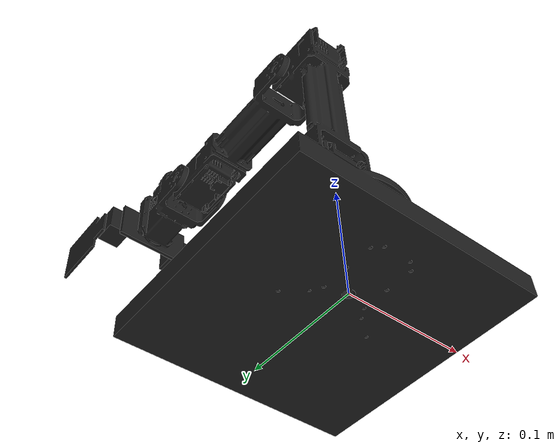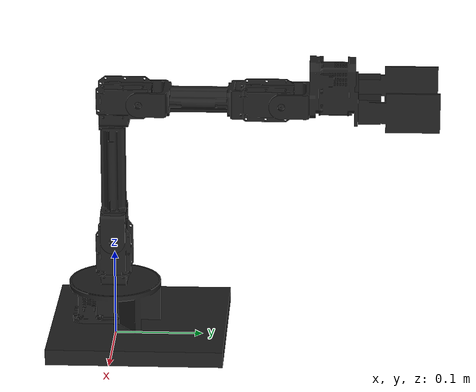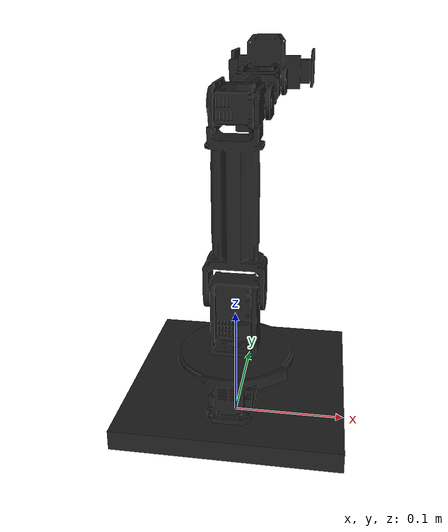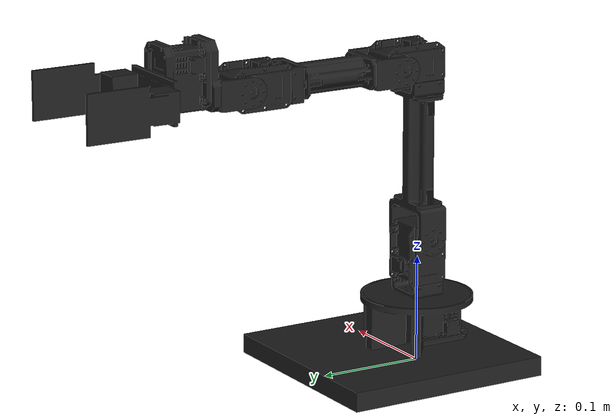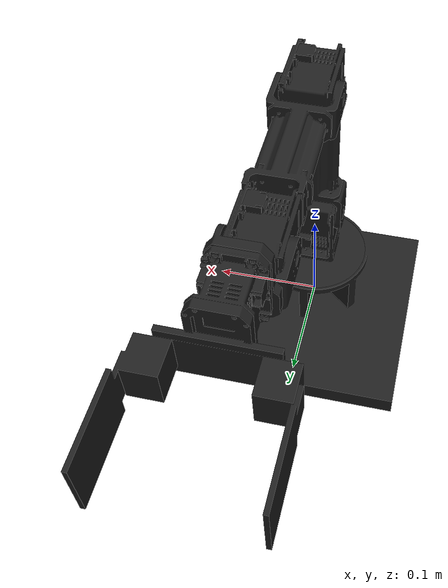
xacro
<?xml version="1.0" ?>

<robot name="mrm" xmlns:xacro="http://www.ros.org/wiki/xacro">

  <!-- BGN - Include -->
  <xacro:include filename="$(find manipulator1ver)/urdf/links_joints.xacro" />
  <!-- END - Include -->

    <material name="white">
    <color rgba="1 1 1 1"/>
  </material>

  <!-- BGN - Robot description -->
  <m_link_mesh name="Base"
              origin_rpy="1.57 0 0" origin_xyz="0 0 0"
              mass="157.633"
              ixx="13.235" ixy="0" ixz="0"
              iyy="13.235" iyz="0"
              izz="9.655"
              meshfile="package://manipulator1ver/meshes/stlGrab/0ServoGrabBase.stl"
              meshscale="0.001 0.001 0.001" />

  <m_joint name="Rotate" type="revolute"
           axis_xyz="0 0 1"
           origin_rpy="0 0 0" origin_xyz="0 0 0.0619"
           parent="Base" child="link_01"
           limit_e="1000" limit_l="-3.14" limit_u="3.14" limit_v="0.5" />

  <m_link_mesh name="link_01"
              origin_rpy="1.57 0 0" origin_xyz="0 0 0"
              mass="157.633"
              ixx="13.235" ixy="0" ixz="0"
              iyy="13.235" iyz="0"
              izz="9.655"
              meshfile="package://manipulator1ver/meshes/stlGrab/1ServoGrab.stl"
              meshscale="0.001 0.001 0.001" />

  <m_joint name="1stick" type="revolute"
           axis_xyz="1 0 0"
           origin_rpy="0 0 0" origin_xyz="0 0 0.058"
           parent="link_01" child="link_02"
           limit_e="1000" limit_l="-1.57" limit_u="1.57" limit_v="0.5" />

    <m_link_mesh name="link_02"
              origin_rpy="1.57 0 0" origin_xyz="0 0 -0.013"
              mass="157.633"
              ixx="13.235" ixy="0" ixz="0"
              iyy="13.235" iyz="0"
              izz="9.655"
              meshfile="package://manipulator1ver/meshes/stlGrab/2ServoGrab.stl"
              meshscale="0.001 0.001 0.001" />

  <m_joint name="2stick" type="revolute"
           axis_xyz="1 0 0"
           origin_rpy="0 0 0" origin_xyz="0 0.0309 0.164"
           parent="link_02" child="link_03"
           limit_e="1000" limit_l="-1.57" limit_u="1.57" limit_v="0.5" />

    <m_link_mesh name="link_03"
              origin_rpy="1.57 0 0" origin_xyz="0 -0.0139 -0.0203"
              mass="157.633"
              ixx="13.235" ixy="0" ixz="0"
              iyy="13.235" iyz="0"
              izz="9.655"
              meshfile="package://manipulator1ver/meshes/stlGrab/3ServoGrab.stl"
              meshscale="0.001 0.001 0.001" />

  <m_joint name="3to4" type="revolute"
           axis_xyz="1 0 0"
           origin_rpy="0 0 0" origin_xyz="0  0.1597 0"
           parent="link_03" child="link_04"
           limit_e="1000" limit_l="-1.57" limit_u="1.57" limit_v="0.5" />

    <m_link_mesh name="link_04"
              origin_rpy="1.57 0 0" origin_xyz="0 -0.014 -0.014"
              mass="157.633"
              ixx="13.235" ixy="0" ixz="0"
              iyy="13.235" iyz="0"
              izz="9.655"
              meshfile="package://manipulator1ver/meshes/stlGrab/4ServoGrab.stl"
              meshscale="0.001 0.001 0.001" />

<!-- GRAB -->

  <m_joint name="GrabR" type="prismatic"
           axis_xyz="1 0 0"
           origin_rpy="0 0 0" origin_xyz="0.038 0.0855 -0.011"
           parent="link_04" child="link_05"
           limit_e="1000" limit_l="-0.02" limit_u="0" limit_v="0.5" />

    <m_link_mesh name="link_05"
              origin_rpy="1.57 0 0" origin_xyz="0 0 0"
              mass="157.633"
              ixx="13.235" ixy="0" ixz="0"
              iyy="13.235" iyz="0"
              izz="9.655"
              meshfile="package://manipulator1ver/meshes/stlGrab/5ServoGrab.stl"
              meshscale="0.001 0.001 0.001" />

  <m_joint name="Grabl" type="prismatic"
           axis_xyz="1 0 0"
           origin_rpy="0 0 0" origin_xyz="-0.038 0.0855 0.017"
           parent="link_04" child="link_06"
           limit_e="1000" limit_l="0" limit_u="0.02" limit_v="0.5" />

    <m_link_mesh name="link_06"
              origin_rpy="1.57 3.14 0" origin_xyz="0 0 0"
              mass="157.633"
              ixx="13.235" ixy="0" ixz="0"
              iyy="13.235" iyz="0"
              izz="9.655"
              meshfile="package://manipulator1ver/meshes/stlGrab/5ServoGrab.stl"
              meshscale="0.001 0.001 0.001" />

           <!-- axis_xyz="1 0 0" -->
           <!-- origin_rpy="0 0 0" origin_xyz="0 0 0" -->
           <!-- parent="link_04" child="Sphere" -->

              <!-- origin_rpy="1.57 0 0" origin_xyz="0 0.15 0" -->
              <!-- mass="157.633" -->
              <!-- ixx="13.235" ixy="0" ixz="0" -->
              <!-- iyy="13.235" iyz="0" -->
              <!-- izz="9.655" -->
              <!-- meshfile="package://manipulator1ver/meshes/Objects/Sphere.stl"   -->

  <!-- END - Robot description -->

  <gazebo>
    <plugin name="gazebo_ros_control" filename="libgazebo_ros_control.so">
    </plugin>
  </gazebo>

</robot>

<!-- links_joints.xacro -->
<robot xmlns:xacro="http://www.ros.org/wiki/xacro">

  <xacro:macro name="m_joint" params="name type axis_xyz origin_rpy origin_xyz parent child limit_e limit_l limit_u limit_v">
    <joint name="${name}" type="${type}">
      <axis xyz="${axis_xyz}" />
      <limit effort="${limit_e}" lower="${limit_l}" upper="${limit_u}" velocity="${limit_v}" />
      <origin rpy="${origin_rpy}" xyz="${origin_xyz}" />
      <parent link="${parent}" />
      <child link="${child}" />
    </joint>
    <transmission name="trans_${name}">
      <type>transmission_interface/SimpleTransmission</type>
      <joint name="${name}">
        <hardwareInterface>hardware_interface/EffortJointInterface</hardwareInterface>
      </joint>
      <actuator name="motor_${name}">
        <hardwareInterface>hardware_interface/EffortJointInterface</hardwareInterface>
        <mechanicalReduction>1</mechanicalReduction>
      </actuator>
    </transmission>
  </xacro:macro>

  <xacro:macro name="m_link_cylinder" params="name origin_xyz origin_rpy radius length mass ixx ixy ixz iyy iyz izz">
    <link name="${name}">
      <inertial>
        <mass value="${mass}" />
        <origin rpy="${origin_rpy}" xyz="${origin_xyz}" />
        <inertia ixx="${ixx}" ixy="${ixy}" ixz="${ixz}" iyy="${iyy}" iyz="${iyz}" izz="${izz}" />
      </inertial>
      <collision>
        <origin rpy="${origin_rpy}" xyz="${origin_xyz}" />
        <geometry>
          <cylinder radius="${radius}" length="${length}" />
        </geometry>
      </collision>
      <visual>
        <origin rpy="${origin_rpy}" xyz="${origin_xyz}" />
        <geometry>
          <cylinder radius="${radius}" length="${length}" />
        </geometry>
      </visual>
    </link>
  </xacro:macro>

  <xacro:macro name="m_link_box" params="name origin_xyz origin_rpy size mass ixx ixy ixz iyy iyz izz">
    <link name="${name}">
      <inertial>
        <mass value="${mass}" />
        <origin rpy="${origin_rpy}" xyz="${origin_xyz}" />
        <inertia ixx="${ixx}" ixy="${ixy}" ixz="${ixz}" iyy="${iyy}" iyz="${iyz}" izz="${izz}" />
      </inertial>
      <collision>
        <origin rpy="${origin_rpy}" xyz="${origin_xyz}" />
        <geometry>
          <box size="${size}" />
        </geometry>
      </collision>
      <visual>
        <origin rpy="${origin_rpy}" xyz="${origin_xyz}" />
        <geometry>
          <box size="${size}" />
        </geometry>
      </visual>
    </link>
  </xacro:macro>

  <xacro:macro name="m_link_mesh" params="name origin_xyz origin_rpy meshfile meshscale mass ixx ixy ixz iyy iyz izz">
    <link name="${name}">
      <inertial>
        <mass value="${mass}" />
        <origin rpy="${origin_rpy}" xyz="${origin_xyz}" />
        <inertia ixx="${ixx}" ixy="${ixy}" ixz="${ixz}" iyy="${iyy}" iyz="${iyz}" izz="${izz}" />
      </inertial>
      <collision>
        <origin rpy="${origin_rpy}" xyz="${origin_xyz}" />
        <geometry>
          <mesh filename="${meshfile}" scale="${meshscale}"/>
        </geometry>
      </collision>
      <visual>
        <origin rpy="${origin_rpy}" xyz="${origin_xyz}" />
        <geometry>
          <mesh filename="${meshfile}" scale="${meshscale}"/>
        </geometry>
        <material name="light_black"/>
      </visual>
    </link>
  </xacro:macro>

</robot>
